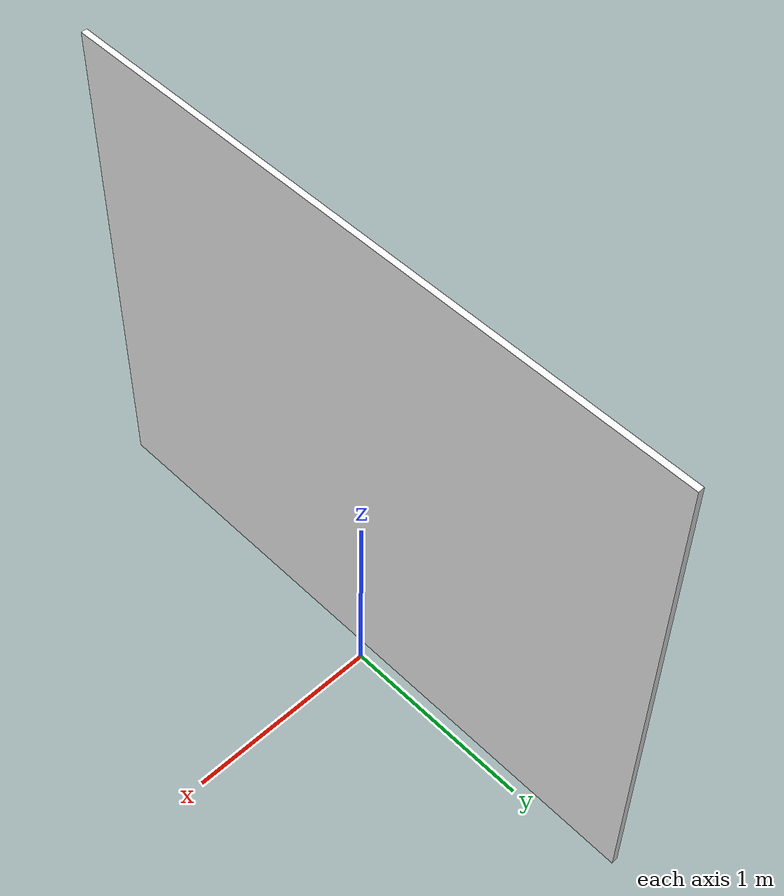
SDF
<?xml version="1.0"?>
<sdf version="1.9"><model name="qr_shelf"><static>true</static>
  <link name="shelf">
    <visual name="white_back"><pose>0.015 0 1.5 0 0 0</pose>
      <geometry><box><size>0.03 3.2 2.6</size></box></geometry>
      <material><diffuse>0.95 0.95 0.95 1</diffuse></material></visual>
    <collision name="back_collision"><pose>0.03 0 1.5 0 0 0</pose>
      <geometry><box><size>0.06 3.2 2.6</size></box></geometry></collision>

        <visual name="qr_01_black">
          <pose>-0.002 -1.25 2.25 0 0 0</pose>
          <geometry><box><size>0.004 0.19 0.19</size></box></geometry>
          <material><ambient>0 0 0 1</ambient><diffuse>0 0 0 1</diffuse>
          <specular>0 0 0 1</specular></material>
        </visual>
        <visual name="qr_01_modules">
          <pose>-0.005 -1.25 2.25 0 0 0</pose>
          <geometry><mesh><uri>meshes/qr_01.dae</uri></mesh></geometry>
          <material><ambient>1 1 1 1</ambient><diffuse>1 1 1 1</diffuse>
          <specular>0 0 0 1</specular></material>
        </visual>
        <visual name="qr_02_black">
          <pose>-0.002 -0.75 2.25 0 0 0</pose>
          <geometry><box><size>0.004 0.19 0.19</size></box></geometry>
          <material><ambient>0 0 0 1</ambient><diffuse>0 0 0 1</diffuse>
          <specular>0 0 0 1</specular></material>
        </visual>
        <visual name="qr_02_modules">
          <pose>-0.005 -0.75 2.25 0 0 0</pose>
          <geometry><mesh><uri>meshes/qr_02.dae</uri></mesh></geometry>
          <material><ambient>1 1 1 1</ambient><diffuse>1 1 1 1</diffuse>
          <specular>0 0 0 1</specular></material>
        </visual>
        <visual name="qr_03_black">
          <pose>-0.002 -0.25 2.25 0 0 0</pose>
          <geometry><box><size>0.004 0.19 0.19</size></box></geometry>
          <material><ambient>0 0 0 1</ambient><diffuse>0 0 0 1</diffuse>
          <specular>0 0 0 1</specular></material>
        </visual>
        <visual name="qr_03_modules">
          <pose>-0.005 -0.25 2.25 0 0 0</pose>
          <geometry><mesh><uri>meshes/qr_03.dae</uri></mesh></geometry>
          <material><ambient>1 1 1 1</ambient><diffuse>1 1 1 1</diffuse>
          <specular>0 0 0 1</specular></material>
        </visual>
        <visual name="qr_04_black">
          <pose>-0.002 0.25 2.25 0 0 0</pose>
          <geometry><box><size>0.004 0.19 0.19</size></box></geometry>
          <material><ambient>0 0 0 1</ambient><diffuse>0 0 0 1</diffuse>
          <specular>0 0 0 1</specular></material>
        </visual>
        <visual name="qr_04_modules">
          <pose>-0.005 0.25 2.25 0 0 0</pose>
          <geometry><mesh><uri>meshes/qr_04.dae</uri></mesh></geometry>
          <material><ambient>1 1 1 1</ambient><diffuse>1 1 1 1</diffuse>
          <specular>0 0 0 1</specular></material>
        </visual>
        <visual name="qr_05_black">
          <pose>-0.002 0.75 2.25 0 0 0</pose>
          <geometry><box><size>0.004 0.19 0.19</size></box></geometry>
          <material><ambient>0 0 0 1</ambient><diffuse>0 0 0 1</diffuse>
          <specular>0 0 0 1</specular></material>
        </visual>
        <visual name="qr_05_modules">
          <pose>-0.005 0.75 2.25 0 0 0</pose>
          <geometry><mesh><uri>meshes/qr_05.dae</uri></mesh></geometry>
          <material><ambient>1 1 1 1</ambient><diffuse>1 1 1 1</diffuse>
          <specular>0 0 0 1</specular></material>
        </visual>
        <visual name="qr_06_black">
          <pose>-0.002 1.25 2.25 0 0 0</pose>
          <geometry><box><size>0.004 0.19 0.19</size></box></geometry>
          <material><ambient>0 0 0 1</ambient><diffuse>0 0 0 1</diffuse>
          <specular>0 0 0 1</specular></material>
        </visual>
        <visual name="qr_06_modules">
          <pose>-0.005 1.25 2.25 0 0 0</pose>
          <geometry><mesh><uri>meshes/qr_06.dae</uri></mesh></geometry>
          <material><ambient>1 1 1 1</ambient><diffuse>1 1 1 1</diffuse>
          <specular>0 0 0 1</specular></material>
        </visual>
        <visual name="qr_07_black">
          <pose>-0.002 -1.25 1.75 0 0 0</pose>
          <geometry><box><size>0.004 0.19 0.19</size></box></geometry>
          <material><ambient>0 0 0 1</ambient><diffuse>0 0 0 1</diffuse>
          <specular>0 0 0 1</specular></material>
        </visual>
        <visual name="qr_07_modules">
          <pose>-0.005 -1.25 1.75 0 0 0</pose>
          <geometry><mesh><uri>meshes/qr_07.dae</uri></mesh></geometry>
          <material><ambient>1 1 1 1</ambient><diffuse>1 1 1 1</diffuse>
          <specular>0 0 0 1</specular></material>
        </visual>
        <visual name="qr_08_black">
          <pose>-0.002 -0.75 1.75 0 0 0</pose>
          <geometry><box><size>0.004 0.19 0.19</size></box></geometry>
          <material><ambient>0 0 0 1</ambient><diffuse>0 0 0 1</diffuse>
          <specular>0 0 0 1</specular></material>
        </visual>
        <visual name="qr_08_modules">
          <pose>-0.005 -0.75 1.75 0 0 0</pose>
          <geometry><mesh><uri>meshes/qr_08.dae</uri></mesh></geometry>
          <material><ambient>1 1 1 1</ambient><diffuse>1 1 1 1</diffuse>
          <specular>0 0 0 1</specular></material>
        </visual>
        <visual name="qr_09_black">
          <pose>-0.002 -0.25 1.75 0 0 0</pose>
          <geometry><box><size>0.004 0.19 0.19</size></box></geometry>
          <material><ambient>0 0 0 1</ambient><diffuse>0 0 0 1</diffuse>
          <specular>0 0 0 1</specular></material>
        </visual>
        <visual name="qr_09_modules">
          <pose>-0.005 -0.25 1.75 0 0 0</pose>
          <geometry><mesh><uri>meshes/qr_09.dae</uri></mesh></geometry>
          <material><ambient>1 1 1 1</ambient><diffuse>1 1 1 1</diffuse>
          <specular>0 0 0 1</specular></material>
        </visual>
        <visual name="qr_10_black">
          <pose>-0.002 0.25 1.75 0 0 0</pose>
          <geometry><box><size>0.004 0.19 0.19</size></box></geometry>
          <material><ambient>0 0 0 1</ambient><diffuse>0 0 0 1</diffuse>
          <specular>0 0 0 1</specular></material>
        </visual>
        <visual name="qr_10_modules">
          <pose>-0.005 0.25 1.75 0 0 0</pose>
          <geometry><mesh><uri>meshes/qr_10.dae</uri></mesh></geometry>
          <material><ambient>1 1 1 1</ambient><diffuse>1 1 1 1</diffuse>
          <specular>0 0 0 1</specular></material>
        </visual>
        <visual name="qr_11_black">
          <pose>-0.002 0.75 1.75 0 0 0</pose>
          <geometry><box><size>0.004 0.19 0.19</size></box></geometry>
          <material><ambient>0 0 0 1</ambient><diffuse>0 0 0 1</diffuse>
          <specular>0 0 0 1</specular></material>
        </visual>
        <visual name="qr_11_modules">
          <pose>-0.005 0.75 1.75 0 0 0</pose>
          <geometry><mesh><uri>meshes/qr_11.dae</uri></mesh></geometry>
          <material><ambient>1 1 1 1</ambient><diffuse>1 1 1 1</diffuse>
          <specular>0 0 0 1</specular></material>
        </visual>
        <visual name="qr_12_black">
          <pose>-0.002 1.25 1.75 0 0 0</pose>
          <geometry><box><size>0.004 0.19 0.19</size></box></geometry>
          <material><ambient>0 0 0 1</ambient><diffuse>0 0 0 1</diffuse>
          <specular>0 0 0 1</specular></material>
        </visual>
        <visual name="qr_12_modules">
          <pose>-0.005 1.25 1.75 0 0 0</pose>
          <geometry><mesh><uri>meshes/qr_12.dae</uri></mesh></geometry>
          <material><ambient>1 1 1 1</ambient><diffuse>1 1 1 1</diffuse>
          <specular>0 0 0 1</specular></material>
        </visual>
        <visual name="qr_13_black">
          <pose>-0.002 -1.25 1.25 0 0 0</pose>
          <geometry><box><size>0.004 0.19 0.19</size></box></geometry>
          <material><ambient>0 0 0 1</ambient><diffuse>0 0 0 1</diffuse>
          <specular>0 0 0 1</specular></material>
        </visual>
        <visual name="qr_13_modules">
          <pose>-0.005 -1.25 1.25 0 0 0</pose>
          <geometry><mesh><uri>meshes/qr_13.dae</uri></mesh></geometry>
          <material><ambient>1 1 1 1</ambient><diffuse>1 1 1 1</diffuse>
          <specular>0 0 0 1</specular></material>
        </visual>
        <visual name="qr_14_black">
          <pose>-0.002 -0.75 1.25 0 0 0</pose>
          <geometry><box><size>0.004 0.19 0.19</size></box></geometry>
          <material><ambient>0 0 0 1</ambient><diffuse>0 0 0 1</diffuse>
          <specular>0 0 0 1</specular></material>
        </visual>
        <visual name="qr_14_modules">
          <pose>-0.005 -0.75 1.25 0 0 0</pose>
          <geometry><mesh><uri>meshes/qr_14.dae</uri></mesh></geometry>
          <material><ambient>1 1 1 1</ambient><diffuse>1 1 1 1</diffuse>
          <specular>0 0 0 1</specular></material>
        </visual>
        <visual name="qr_15_black">
          <pose>-0.002 -0.25 1.25 0 0 0</pose>
          <geometry><box><size>0.004 0.19 0.19</size></box></geometry>
          <material><ambient>0 0 0 1</ambient><diffuse>0 0 0 1</diffuse>
          <specular>0 0 0 1</specular></material>
        </visual>
        <visual name="qr_15_modules">
          <pose>-0.005 -0.25 1.25 0 0 0</pose>
          <geometry><mesh><uri>meshes/qr_15.dae</uri></mesh></geometry>
          <material><ambient>1 1 1 1</ambient><diffuse>1 1 1 1</diffuse>
          <specular>0 0 0 1</specular></material>
        </visual>
        <visual name="qr_16_black">
          <pose>-0.002 0.25 1.25 0 0 0</pose>
          <geometry><box><size>0.004 0.19 0.19</size></box></geometry>
          <material><ambient>0 0 0 1</ambient><diffuse>0 0 0 1</diffuse>
          <specular>0 0 0 1</specular></material>
        </visual>
        <visual name="qr_16_modules">
          <pose>-0.005 0.25 1.25 0 0 0</pose>
          <geometry><mesh><uri>meshes/qr_16.dae</uri></mesh></geometry>
          <material><ambient>1 1 1 1</ambient><diffuse>1 1 1 1</diffuse>
          <specular>0 0 0 1</specular></material>
        </visual>
        <visual name="qr_17_black">
          <pose>-0.002 0.75 1.25 0 0 0</pose>
          <geometry><box><size>0.004 0.19 0.19</size></box></geometry>
          <material><ambient>0 0 0 1</ambient><diffuse>0 0 0 1</diffuse>
          <specular>0 0 0 1</specular></material>
        </visual>
        <visual name="qr_17_modules">
          <pose>-0.005 0.75 1.25 0 0 0</pose>
          <geometry><mesh><uri>meshes/qr_17.dae</uri></mesh></geometry>
          <material><ambient>1 1 1 1</ambient><diffuse>1 1 1 1</diffuse>
          <specular>0 0 0 1</specular></material>
        </visual>
        <visual name="qr_18_black">
          <pose>-0.002 1.25 1.25 0 0 0</pose>
          <geometry><box><size>0.004 0.19 0.19</size></box></geometry>
          <material><ambient>0 0 0 1</ambient><diffuse>0 0 0 1</diffuse>
          <specular>0 0 0 1</specular></material>
        </visual>
        <visual name="qr_18_modules">
          <pose>-0.005 1.25 1.25 0 0 0</pose>
          <geometry><mesh><uri>meshes/qr_18.dae</uri></mesh></geometry>
          <material><ambient>1 1 1 1</ambient><diffuse>1 1 1 1</diffuse>
          <specular>0 0 0 1</specular></material>
        </visual>
        <visual name="qr_19_black">
          <pose>-0.002 -1.25 0.75 0 0 0</pose>
          <geometry><box><size>0.004 0.19 0.19</size></box></geometry>
          <material><ambient>0 0 0 1</ambient><diffuse>0 0 0 1</diffuse>
          <specular>0 0 0 1</specular></material>
        </visual>
        <visual name="qr_19_modules">
          <pose>-0.005 -1.25 0.75 0 0 0</pose>
          <geometry><mesh><uri>meshes/qr_19.dae</uri></mesh></geometry>
          <material><ambient>1 1 1 1</ambient><diffuse>1 1 1 1</diffuse>
          <specular>0 0 0 1</specular></material>
        </visual>
        <visual name="qr_20_black">
          <pose>-0.002 -0.75 0.75 0 0 0</pose>
          <geometry><box><size>0.004 0.19 0.19</size></box></geometry>
          <material><ambient>0 0 0 1</ambient><diffuse>0 0 0 1</diffuse>
          <specular>0 0 0 1</specular></material>
        </visual>
        <visual name="qr_20_modules">
          <pose>-0.005 -0.75 0.75 0 0 0</pose>
          <geometry><mesh><uri>meshes/qr_20.dae</uri></mesh></geometry>
          <material><ambient>1 1 1 1</ambient><diffuse>1 1 1 1</diffuse>
          <specular>0 0 0 1</specular></material>
        </visual>
        <visual name="qr_21_black">
          <pose>-0.002 -0.25 0.75 0 0 0</pose>
          <geometry><box><size>0.004 0.19 0.19</size></box></geometry>
          <material><ambient>0 0 0 1</ambient><diffuse>0 0 0 1</diffuse>
          <specular>0 0 0 1</specular></material>
        </visual>
        <visual name="qr_21_modules">
          <pose>-0.005 -0.25 0.75 0 0 0</pose>
          <geometry><mesh><uri>meshes/qr_21.dae</uri></mesh></geometry>
          <material><ambient>1 1 1 1</ambient><diffuse>1 1 1 1</diffuse>
          <specular>0 0 0 1</specular></material>
        </visual>
        <visual name="qr_22_black">
          <pose>-0.002 0.25 0.75 0 0 0</pose>
          <geometry><box><size>0.004 0.19 0.19</size></box></geometry>
          <material><ambient>0 0 0 1</ambient><diffuse>0 0 0 1</diffuse>
          <specular>0 0 0 1</specular></material>
        </visual>
        <visual name="qr_22_modules">
          <pose>-0.005 0.25 0.75 0 0 0</pose>
          <geometry><mesh><uri>meshes/qr_22.dae</uri></mesh></geometry>
          <material><ambient>1 1 1 1</ambient><diffuse>1 1 1 1</diffuse>
          <specular>0 0 0 1</specular></material>
        </visual>
        <visual name="qr_23_black">
          <pose>-0.002 0.75 0.75 0 0 0</pose>
          <geometry><box><size>0.004 0.19 0.19</size></box></geometry>
          <material><ambient>0 0 0 1</ambient><diffuse>0 0 0 1</diffuse>
          <specular>0 0 0 1</specular></material>
        </visual>
        <visual name="qr_23_modules">
          <pose>-0.005 0.75 0.75 0 0 0</pose>
          <geometry><mesh><uri>meshes/qr_23.dae</uri></mesh></geometry>
          <material><ambient>1 1 1 1</ambient><diffuse>1 1 1 1</diffuse>
          <specular>0 0 0 1</specular></material>
        </visual>
        <visual name="qr_24_black">
          <pose>-0.002 1.25 0.75 0 0 0</pose>
          <geometry><box><size>0.004 0.19 0.19</size></box></geometry>
          <material><ambient>0 0 0 1</ambient><diffuse>0 0 0 1</diffuse>
          <specular>0 0 0 1</specular></material>
        </visual>
        <visual name="qr_24_modules">
          <pose>-0.005 1.25 0.75 0 0 0</pose>
          <geometry><mesh><uri>meshes/qr_24.dae</uri></mesh></geometry>
          <material><ambient>1 1 1 1</ambient><diffuse>1 1 1 1</diffuse>
          <specular>0 0 0 1</specular></material>
        </visual>
  </link>
</model></sdf>
